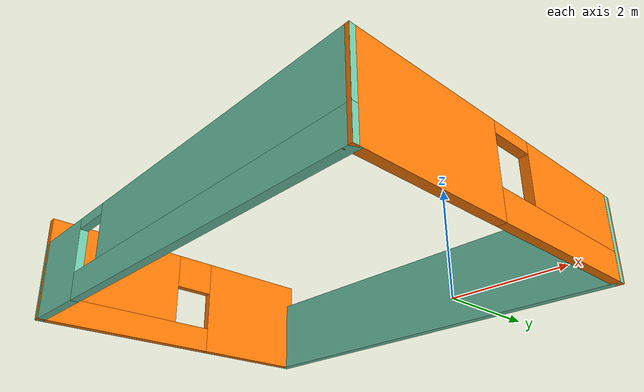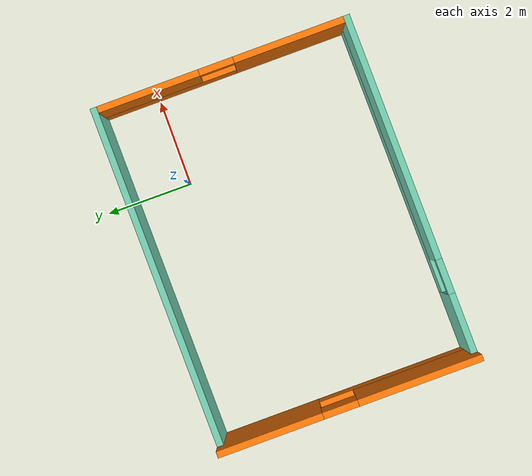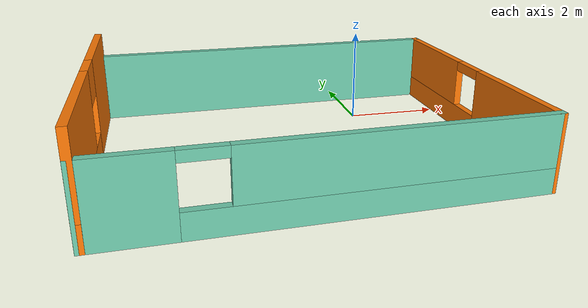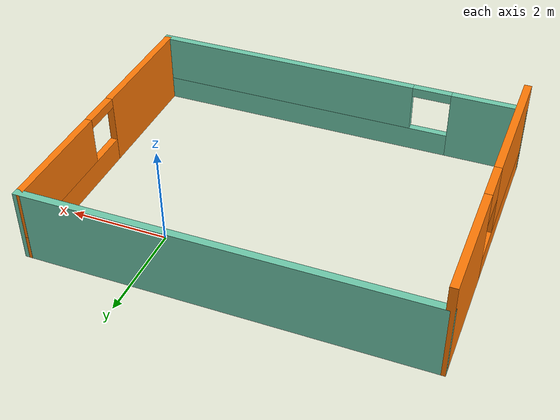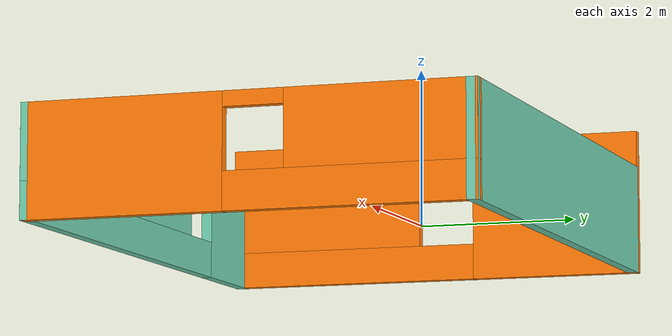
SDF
<?xml version='1.0'?>
<sdf version='1.6'>
  <model name='my_wall'>
    <pose frame=''>-1.8145 -1.63408 0 0 -0 0</pose>
    <link name='Wall_0'>
      <collision name='Wall_0_Collision'>
        <geometry>
          <box>
            <size>8 0.15 1.5</size>
          </box>
        </geometry>
        <pose frame=''>0 0 0.75 0 -0 0</pose>
      </collision>
      <visual name='Wall_0_Visual'>
        <pose frame=''>0 0 0.75 0 -0 0</pose>
        <geometry>
          <box>
            <size>8 0.15 1.5</size>
          </box>
        </geometry>
        <material>
          <script>
            <uri>file://media/materials/scripts/gazebo.material</uri>
            <name>Gazebo/Grey</name>
          </script>
          <ambient>0.435294 0.796078 0.67451 1</ambient>
        </material>
        <meta>
          <layer>0</layer>
        </meta>
      </visual>
      <pose frame=''>0 2.93658 0 0 -0 0.008791</pose>
    </link>
    <link name='Wall_2'>
      <pose frame=''>-3.9245 -0.034424 0 0 0 -1.5708</pose>
      <visual name='Wall_2_Visual_0'>
        <pose frame=''>-1.80969 0 1 0 -0 0</pose>
        <geometry>
          <box>
            <size>2.40375 0.15 2</size>
          </box>
        </geometry>
        <material>
          <script>
            <uri>file://media/materials/scripts/gazebo.material</uri>
            <name>Gazebo/Grey</name>
          </script>
          <ambient>0.996078 0.47451 0.0196078 1</ambient>
        </material>
        <meta>
          <layer>0</layer>
        </meta>
      </visual>
      <collision name='Wall_2_Collision_0'>
        <geometry>
          <box>
            <size>2.40375 0.15 2</size>
          </box>
        </geometry>
        <pose frame=''>-1.80969 0 1 0 -0 0</pose>
      </collision>
      <visual name='Wall_2_Visual_1'>
        <pose frame=''>1.20188 0 0.25 0 -0 0</pose>
        <geometry>
          <box>
            <size>3.61938 0.15 0.5</size>
          </box>
        </geometry>
        <material>
          <script>
            <uri>file://media/materials/scripts/gazebo.material</uri>
            <name>Gazebo/Grey</name>
          </script>
          <ambient>0.996078 0.47451 0.0196078 1</ambient>
        </material>
        <meta>
          <layer>0</layer>
        </meta>
      </visual>
      <collision name='Wall_2_Collision_1'>
        <geometry>
          <box>
            <size>3.61938 0.15 0.5</size>
          </box>
        </geometry>
        <pose frame=''>1.20188 0 0.25 0 -0 0</pose>
      </collision>
      <visual name='Wall_2_Visual_2'>
        <pose frame=''>1.60188 0 1.25 0 -0 0</pose>
        <geometry>
          <box>
            <size>2.81938 0.15 1.5</size>
          </box>
        </geometry>
        <material>
          <script>
            <uri>file://media/materials/scripts/gazebo.material</uri>
            <name>Gazebo/Grey</name>
          </script>
          <ambient>0.996078 0.47451 0.0196078 1</ambient>
        </material>
        <meta>
          <layer>0</layer>
        </meta>
      </visual>
      <collision name='Wall_2_Collision_2'>
        <geometry>
          <box>
            <size>2.81938 0.15 1.5</size>
          </box>
        </geometry>
        <pose frame=''>1.60188 0 1.25 0 -0 0</pose>
      </collision>
      <visual name='Wall_2_Visual_3'>
        <pose frame=''>-0.207814 0 1.65 0 -0 0</pose>
        <geometry>
          <box>
            <size>0.8 0.15 0.7</size>
          </box>
        </geometry>
        <material>
          <script>
            <uri>file://media/materials/scripts/gazebo.material</uri>
            <name>Gazebo/Grey</name>
          </script>
          <ambient>0.996078 0.47451 0.0196078 1</ambient>
        </material>
        <meta>
          <layer>0</layer>
        </meta>
      </visual>
      <collision name='Wall_2_Collision_3'>
        <geometry>
          <box>
            <size>0.8 0.15 0.7</size>
          </box>
        </geometry>
        <pose frame=''>-0.207814 0 1.65 0 -0 0</pose>
      </collision>
    </link>
    <link name='Wall_3'>
      <pose frame=''>0 -2.92842 0 0 -0 0.010829</pose>
      <visual name='Wall_3_Visual_0'>
        <pose frame=''>-3.23688 0 0.75 0 -0 0</pose>
        <geometry>
          <box>
            <size>1.52625 0.15 1.5</size>
          </box>
        </geometry>
        <material>
          <script>
            <uri>file://media/materials/scripts/gazebo.material</uri>
            <name>Gazebo/Grey</name>
          </script>
          <ambient>0.435294 0.796078 0.67451 1</ambient>
        </material>
        <meta>
          <layer>0</layer>
        </meta>
      </visual>
      <collision name='Wall_3_Collision_0'>
        <geometry>
          <box>
            <size>1.52625 0.15 1.5</size>
          </box>
        </geometry>
        <pose frame=''>-3.23688 0 0.75 0 -0 0</pose>
      </collision>
      <visual name='Wall_3_Visual_1'>
        <pose frame=''>0.763124 0 0.25 0 -0 0</pose>
        <geometry>
          <box>
            <size>6.47375 0.15 0.5</size>
          </box>
        </geometry>
        <material>
          <script>
            <uri>file://media/materials/scripts/gazebo.material</uri>
            <name>Gazebo/Grey</name>
          </script>
          <ambient>0.435294 0.796078 0.67451 1</ambient>
        </material>
        <meta>
          <layer>0</layer>
        </meta>
      </visual>
      <collision name='Wall_3_Collision_1'>
        <geometry>
          <box>
            <size>6.47375 0.15 0.5</size>
          </box>
        </geometry>
        <pose frame=''>0.763124 0 0.25 0 -0 0</pose>
      </collision>
      <visual name='Wall_3_Visual_2'>
        <pose frame=''>1.16312 0 1 0 -0 0</pose>
        <geometry>
          <box>
            <size>5.67375 0.15 1</size>
          </box>
        </geometry>
        <material>
          <script>
            <uri>file://media/materials/scripts/gazebo.material</uri>
            <name>Gazebo/Grey</name>
          </script>
          <ambient>0.435294 0.796078 0.67451 1</ambient>
        </material>
        <meta>
          <layer>0</layer>
        </meta>
      </visual>
      <collision name='Wall_3_Collision_2'>
        <geometry>
          <box>
            <size>5.67375 0.15 1</size>
          </box>
        </geometry>
        <pose frame=''>1.16312 0 1 0 -0 0</pose>
      </collision>
      <visual name='Wall_3_Visual_3'>
        <pose frame=''>-2.07375 0 1.4 0 -0 0</pose>
        <geometry>
          <box>
            <size>0.8 0.15 0.2</size>
          </box>
        </geometry>
        <material>
          <script>
            <uri>file://media/materials/scripts/gazebo.material</uri>
            <name>Gazebo/Grey</name>
          </script>
          <ambient>0.435294 0.796078 0.67451 1</ambient>
        </material>
        <meta>
          <layer>0</layer>
        </meta>
      </visual>
      <collision name='Wall_3_Collision_3'>
        <geometry>
          <box>
            <size>0.8 0.15 0.2</size>
          </box>
        </geometry>
        <pose frame=''>-2.07375 0 1.4 0 -0 0</pose>
      </collision>
    </link>
    <link name='Wall_4'>
      <pose frame=''>3.9245 0.042576 0 0 -0 1.5708</pose>
      <visual name='Wall_4_Visual_0'>
        <pose frame=''>-1.64786 0 0.75 0 -0 0</pose>
        <geometry>
          <box>
            <size>2.71111 0.15 1.5</size>
          </box>
        </geometry>
        <material>
          <script>
            <uri>file://media/materials/scripts/gazebo.material</uri>
            <name>Gazebo/Grey</name>
          </script>
          <ambient>0.996078 0.47451 0.0196078 1</ambient>
        </material>
        <meta>
          <layer>0</layer>
        </meta>
      </visual>
      <collision name='Wall_4_Collision_0'>
        <geometry>
          <box>
            <size>2.71111 0.15 1.5</size>
          </box>
        </geometry>
        <pose frame=''>-1.64786 0 0.75 0 -0 0</pose>
      </collision>
      <visual name='Wall_4_Visual_1'>
        <pose frame=''>1.35556 0 0.25 0 -0 0</pose>
        <geometry>
          <box>
            <size>3.29571 0.15 0.5</size>
          </box>
        </geometry>
        <material>
          <script>
            <uri>file://media/materials/scripts/gazebo.material</uri>
            <name>Gazebo/Grey</name>
          </script>
          <ambient>0.996078 0.47451 0.0196078 1</ambient>
        </material>
        <meta>
          <layer>0</layer>
        </meta>
      </visual>
      <collision name='Wall_4_Collision_1'>
        <geometry>
          <box>
            <size>3.29571 0.15 0.5</size>
          </box>
        </geometry>
        <pose frame=''>1.35556 0 0.25 0 -0 0</pose>
      </collision>
      <visual name='Wall_4_Visual_2'>
        <pose frame=''>1.75556 0 1 0 -0 0</pose>
        <geometry>
          <box>
            <size>2.49571 0.15 1</size>
          </box>
        </geometry>
        <material>
          <script>
            <uri>file://media/materials/scripts/gazebo.material</uri>
            <name>Gazebo/Grey</name>
          </script>
          <ambient>0.996078 0.47451 0.0196078 1</ambient>
        </material>
        <meta>
          <layer>0</layer>
        </meta>
      </visual>
      <collision name='Wall_4_Collision_2'>
        <geometry>
          <box>
            <size>2.49571 0.15 1</size>
          </box>
        </geometry>
        <pose frame=''>1.75556 0 1 0 -0 0</pose>
      </collision>
      <visual name='Wall_4_Visual_3'>
        <pose frame=''>0.1077 0 1.4 0 -0 0</pose>
        <geometry>
          <box>
            <size>0.8 0.15 0.2</size>
          </box>
        </geometry>
        <material>
          <script>
            <uri>file://media/materials/scripts/gazebo.material</uri>
            <name>Gazebo/Grey</name>
          </script>
          <ambient>0.996078 0.47451 0.0196078 1</ambient>
        </material>
        <meta>
          <layer>0</layer>
        </meta>
      </visual>
      <collision name='Wall_4_Collision_3'>
        <geometry>
          <box>
            <size>0.8 0.15 0.2</size>
          </box>
        </geometry>
        <pose frame=''>0.1077 0 1.4 0 -0 0</pose>
      </collision>
    </link>
    <static>1</static>
  </model>
</sdf>
